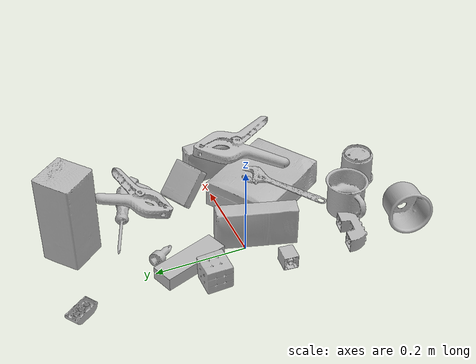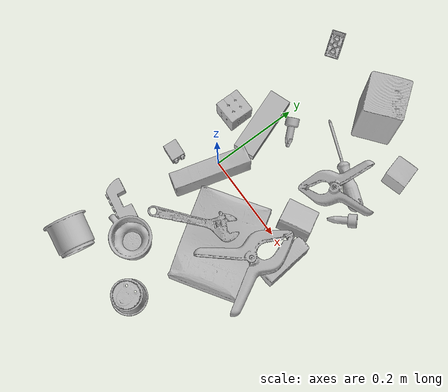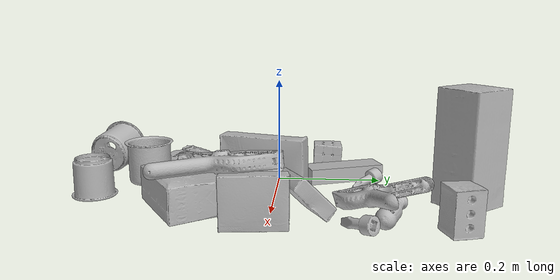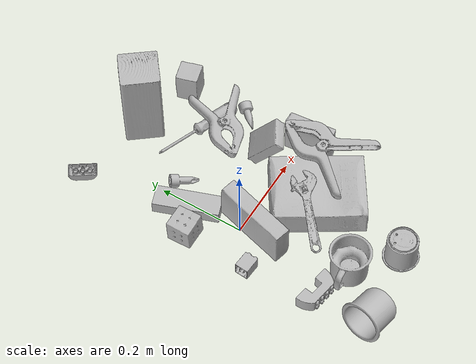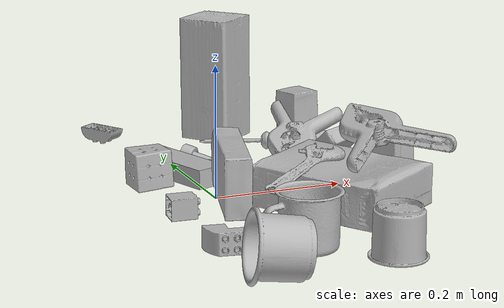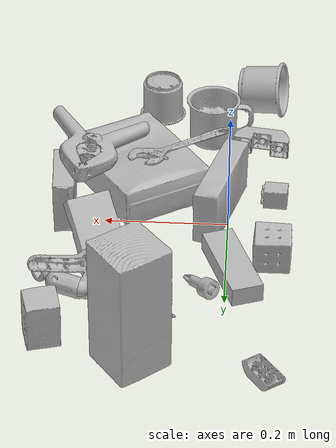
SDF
<sdf version="1.4">
  <world name="default">
    <light name="light1" type="point">
      <pose>0 0 1 0 0 0</pose>
      <diffuse>3 3 3 1</diffuse>
      <specular>3 3 3 1</specular>
    </light>
    <light name="light2" type="point">
      <pose>0 0.5 2 0 0 0</pose>
      <diffuse>1 1 1 1</diffuse>
      <specular>1 1 1 1</specular>
    </light>
    <light name="light3" type="point">
      <pose>0 0.5 2 0 0 0</pose>
      <diffuse>3 3 3 1</diffuse>
      <specular>3 3 3 1</specular>
    </light>
    <scene>
      <ambient>0.7 0.7 0.7</ambient>
    </scene>
    <model name="box21">
      <link name="link_box21">
        <collision name="default">
          <geometry>
            <mesh>
              <uri>model://cracker_box/collision_meshes/collision.obj</uri>
              <scale>1.0 1.0 1.0</scale>
            </mesh>
          </geometry>
          <surface>
            <friction>
              <ode>
                <mu>0.5</mu>
                <mu2>0.5</mu2>
              </ode>
            </friction>
          <contact>
        <ode>
            <max_vel>0</max_vel>
            <min_depth>0.0001</min_depth>
            <kp>1e8</kp>
        </ode>
    </contact></surface>
        </collision>
        <visual name="default">
          <geometry>
            <mesh>
              <uri>model://cracker_box/visual_meshes/visual.dae</uri>
              <scale>1.0 1.0 1.0</scale>
            </mesh>
          </geometry>
        </visual>
        <inertial>
          <mass>1.391977071762085</mass>
          <pose>0.0009464159375056624 0.0002543424488976598 -0.0017029533628374338 -0.000316207597302205 -0.011106489600460226 0.002546794768991959</pose>
          <inertia>
            <ixx>0.0035405685</ixx>
            <iyy>0.0058461735</iyy>
            <izz>0.008343027</izz>
            <ixy>0</ixy>
            <ixz>0</ixz>
            <iyz>0</iyz>
          </inertia>
        </inertial>
      </link>
      <pose>0.15233981609344482 -0.10654624551534653 0.03638412058353424 -0.014050880964996905 -0.005016083166409006 2.1474223076654537</pose>
    </model>
    <model name="box22">
      <link name="link_box22">
        <collision name="default">
          <geometry>
            <mesh>
              <uri>model://pudding_box/collision_meshes/collision.obj</uri>
              <scale>1.0 1.0 1.0</scale>
            </mesh>
          </geometry>
          <surface>
            <friction>
              <ode>
                <mu>0.5</mu>
                <mu2>0.5</mu2>
              </ode>
            </friction>
          <contact>
        <ode>
            <max_vel>0</max_vel>
            <min_depth>0.0001</min_depth>
            <kp>1e8</kp>
        </ode>
    </contact></surface>
        </collision>
        <visual name="default">
          <geometry>
            <mesh>
              <uri>model://pudding_box/visual_meshes/visual.dae</uri>
              <scale>1.0 1.0 1.0</scale>
            </mesh>
          </geometry>
        </visual>
        <inertial>
          <mass>0.30066633224487305</mass>
          <pose>0.0004894821904599667 0.0008067885646596551 -0.0005188827635720372 0.005213102250656644 -0.006603798267444238 0.020079828885202117</pose>
          <inertia>
            <ixx>0.0003398878</ixx>
            <iyy>0.00022867892</iyy>
            <izz>0.00050193316</izz>
            <ixy>0</ixy>
            <ixz>0</ixz>
            <iyz>0</iyz>
          </inertia>
        </inertial>
      </link>
      <pose>0.26697593927383423 -0.019280346110463142 0.044576533138751984 -0.020361777332567308 -1.5480888723088948 -3.034485413289039</pose>
    </model>
    <model name="box23">
      <link name="link_box23">
        <collision name="default">
          <geometry>
            <mesh>
              <uri>model://rubiks_cube/collision_meshes/collision.obj</uri>
              <scale>1.0 1.0 1.0</scale>
            </mesh>
          </geometry>
          <surface>
            <friction>
              <ode>
                <mu>0.5</mu>
                <mu2>0.5</mu2>
              </ode>
            </friction>
          <contact>
        <ode>
            <max_vel>0</max_vel>
            <min_depth>0.0001</min_depth>
            <kp>1e8</kp>
        </ode>
    </contact></surface>
        </collision>
        <visual name="default">
          <geometry>
            <mesh>
              <uri>model://rubiks_cube/visual_meshes/visual.dae</uri>
              <scale>1.0 1.0 1.0</scale>
            </mesh>
          </geometry>
        </visual>
        <inertial>
          <mass>0.26383036375045776</mass>
          <pose>2.6721041649580002e-05 5.256966323941015e-05 -7.264316082000732e-06 -0.054671492146459166 -0.0981403456898064 -0.03445706250673431</pose>
          <inertia>
            <ixx>0.000145784</ixx>
            <iyy>0.00014510413</iyy>
            <izz>0.00014699204</izz>
            <ixy>0</ixy>
            <ixz>0</ixz>
            <iyz>0</iyz>
          </inertia>
        </inertial>
      </link>
      <pose>-0.0708058550953865 0.09662643074989319 0.029700232669711113 -1.61275641031142 -0.020652620307363125 0.015941950059089535</pose>
    </model>
    <model name="cup1">
      <link name="link_cup1">
        <collision name="default">
          <geometry>
            <mesh>
              <uri>model://i_cups/collision_meshes/collision.obj</uri>
              <scale>1.0 1.0 1.0</scale>
            </mesh>
          </geometry>
          <surface>
            <friction>
              <ode>
                <mu>0.5</mu>
                <mu2>0.5</mu2>
              </ode>
            </friction>
          <contact>
        <ode>
            <max_vel>0</max_vel>
            <min_depth>0.0001</min_depth>
            <kp>1e8</kp>
        </ode>
    </contact></surface>
        </collision>
        <visual name="default">
          <geometry>
            <mesh>
              <uri>model://i_cups/visual_meshes/visual.dae</uri>
              <scale>1.0 1.0 1.0</scale>
            </mesh>
          </geometry>
        </visual>
        <inertial>
          <mass>0.07817669957876205</mass>
          <pose>0.00011240140884183347 0.00016797371790744364 -0.0008579030982218683 -0.02898336998566683 -0.039872909189422004 -0.34590568894983</pose>
          <inertia>
            <ixx>0.000108236774</ixx>
            <iyy>0.000109190434</iyy>
            <izz>0.00012097212</izz>
            <ixy>0</ixy>
            <ixz>0</ixz>
            <iyz>0</iyz>
          </inertia>
        </inertial>
      </link>
      <pose>-0.05258585140109062 -0.3536067306995392 0.04477963596582413 -0.3580448799732526 -1.4431054139193729 0.17271451387712208</pose>
    </model>
    <model name="cup2">
      <link name="link_cup2">
        <collision name="default">
          <geometry>
            <mesh>
              <uri>model://f_cups/collision_meshes/collision.obj</uri>
              <scale>1.0 1.0 1.0</scale>
            </mesh>
          </geometry>
          <surface>
            <friction>
              <ode>
                <mu>0.5</mu>
                <mu2>0.5</mu2>
              </ode>
            </friction>
          <contact>
        <ode>
            <max_vel>0</max_vel>
            <min_depth>0.0001</min_depth>
            <kp>1e8</kp>
        </ode>
    </contact></surface>
        </collision>
        <visual name="default">
          <geometry>
            <mesh>
              <uri>model://f_cups/visual_meshes/visual.dae</uri>
              <scale>1.0 1.0 1.0</scale>
            </mesh>
          </geometry>
        </visual>
        <inertial>
          <mass>0.06179655343294144</mass>
          <pose>-0.003171469084918499 -0.0006240077782422304 -0.0036555363330990076 0.786228783809594 -0.26079147583364887 -0.18237327348602217</pose>
          <inertia>
            <ixx>5.8090412e-05</ixx>
            <iyy>6.0937502e-05</iyy>
            <izz>6.3437656e-05</izz>
            <ixy>0</ixy>
            <ixz>0</ixz>
            <iyz>0</iyz>
          </inertia>
        </inertial>
      </link>
      <pose>0.12581110000610352 -0.33124810457229614 0.03630403056740761 -3.141592496414769 -1.1708857195235218e-07 0.975232395398482</pose>
    </model>
    <model name="box11">
      <link name="link_box11">
        <collision name="default">
          <geometry>
            <mesh>
              <uri>model://jenga/collision_meshes/collision.obj</uri>
              <scale>1.0 1.0 1.0</scale>
            </mesh>
          </geometry>
          <surface>
            <friction>
              <ode>
                <mu>0.5</mu>
                <mu2>0.5</mu2>
              </ode>
            </friction>
          <contact>
        <ode>
            <max_vel>0</max_vel>
            <min_depth>0.0001</min_depth>
            <kp>1e8</kp>
        </ode>
    </contact></surface>
        </collision>
        <visual name="default">
          <geometry>
            <mesh>
              <uri>model://jenga/visual_meshes/visual.dae</uri>
              <scale>1.0 1.0 1.0</scale>
            </mesh>
          </geometry>
        </visual>
        <inertial>
          <mass>0.2841220796108246</mass>
          <pose>-2.5028555228345795e-07 -0.00010250010382151231 -4.0923401684267446e-05 0.0 -7.34215461761844e-07 0.0</pose>
          <inertia>
            <ixx>7.8623474e-05</ixx>
            <iyy>0.00053275056</iyy>
            <izz>0.0005687565</izz>
            <ixy>0</ixy>
            <ixz>0</ixz>
            <iyz>0</iyz>
          </inertia>
        </inertial>
      </link>
      <pose>-0.009409835562109947 0.12853382527828217 0.014999995939433575 4.0923700424697304e-08 8.629255616223754e-09 1.91880332284023</pose>
    </model>
    <model name="box12">
      <link name="link_box12">
        <collision name="default">
          <geometry>
            <mesh>
              <uri>model://wood_block/collision_meshes/collision.obj</uri>
              <scale>1.0 1.0 1.0</scale>
            </mesh>
          </geometry>
          <surface>
            <friction>
              <ode>
                <mu>0.5</mu>
                <mu2>0.5</mu2>
              </ode>
            </friction>
          <contact>
        <ode>
            <max_vel>0</max_vel>
            <min_depth>0.0001</min_depth>
            <kp>1e8</kp>
        </ode>
    </contact></surface>
        </collision>
        <visual name="default">
          <geometry>
            <mesh>
              <uri>model://wood_block/visual_meshes/visual.dae</uri>
              <scale>1.0 1.0 1.0</scale>
            </mesh>
          </geometry>
        </visual>
        <inertial>
          <mass>1.792885661125183</mass>
          <pose>-5.813315510749817e-06 -0.0005708095268346369 0.0002640858292579651 -0.0522099864925601 -0.005192695938411627 -0.006861379223067069</pose>
          <inertia>
            <ixx>0.0023991528</ixx>
            <iyy>0.007578924</iyy>
            <izz>0.007550574</izz>
            <ixy>0</ixy>
            <ixz>0</ixz>
            <iyz>0</iyz>
          </inertia>
        </inertial>
      </link>
      <pose>0.13127458095550537 0.3392324447631836 0.10359007865190506 -0.29765167267857445 -1.5707960494306894 -0.6004151840642696</pose>
    </model>
    <model name="box13">
      <link name="link_box13">
        <collision name="default">
          <geometry>
            <mesh>
              <uri>model://sugar_box/collision_meshes/collision.obj</uri>
              <scale>1.0 1.0 1.0</scale>
            </mesh>
          </geometry>
          <surface>
            <friction>
              <ode>
                <mu>0.5</mu>
                <mu2>0.5</mu2>
              </ode>
            </friction>
          <contact>
        <ode>
            <max_vel>0</max_vel>
            <min_depth>0.0001</min_depth>
            <kp>1e8</kp>
        </ode>
    </contact></surface>
        </collision>
        <visual name="default">
          <geometry>
            <mesh>
              <uri>model://sugar_box/visual_meshes/visual.dae</uri>
              <scale>1.0 1.0 1.0</scale>
            </mesh>
          </geometry>
        </visual>
        <inertial>
          <mass>0.8825364708900452</mass>
          <pose>0.0010343727190047503 3.8491099985549226e-05 -0.00036364805418998003 -0.0004046260965456432 0.0010506635219437153 0.002615379021860657</pose>
          <inertia>
            <ixx>0.0007353271</ixx>
            <iyy>0.0023767278</iyy>
            <izz>0.002845227</izz>
            <ixy>0</ixy>
            <ixz>0</ixz>
            <iyz>0</iyz>
          </inertia>
        </inertial>
      </link>
      <pose>0.013504419475793839 -0.03022804483771324 0.04645008593797684 1.5710198184625506 -4.0143108833747344e-05 1.2990896618985175</pose>
    </model>
    <model name="box14">
      <link name="link_box14">
        <collision name="default">
          <geometry>
            <mesh>
              <uri>model://gelatin_box/collision_meshes/collision.obj</uri>
              <scale>1.0 1.0 1.0</scale>
            </mesh>
          </geometry>
          <surface>
            <friction>
              <ode>
                <mu>0.5</mu>
                <mu2>0.5</mu2>
              </ode>
            </friction>
          <contact>
        <ode>
            <max_vel>0</max_vel>
            <min_depth>0.0001</min_depth>
            <kp>1e8</kp>
        </ode>
    </contact></surface>
        </collision>
        <visual name="default">
          <geometry>
            <mesh>
              <uri>model://gelatin_box/visual_meshes/visual.dae</uri>
              <scale>1.0 1.0 1.0</scale>
            </mesh>
          </geometry>
        </visual>
        <inertial>
          <mass>0.13771659135818481</mass>
          <pose>0.0004319618456065655 0.00011156871914863586 -0.0003640321083366871 -0.0010503722043797578 -0.004755819155943452 0.016440555746729004</pose>
          <inertia>
            <ixx>9.721668e-05</ixx>
            <iyy>6.944137e-05</iyy>
            <izz>0.00014798543</izz>
            <ixy>0</ixy>
            <ixz>0</ixz>
            <iyz>0</iyz>
          </inertia>
        </inertial>
      </link>
      <pose>0.2111397087574005 0.059428270906209946 0.03872711956501007 2.356627579595285 0.005587135745245002 0.4966431251418118</pose>
    </model>
    <model name="cup15">
      <link name="link_cup15">
        <collision name="default">
          <geometry>
            <mesh>
              <uri>model://mug/collision_meshes/collision.obj</uri>
              <scale>1.0 1.0 1.0</scale>
            </mesh>
          </geometry>
          <surface>
            <friction>
              <ode>
                <mu>0.5</mu>
                <mu2>0.5</mu2>
              </ode>
            </friction>
          <contact>
        <ode>
            <max_vel>0</max_vel>
            <min_depth>0.0001</min_depth>
            <kp>1e8</kp>
        </ode>
    </contact></surface>
        </collision>
        <visual name="default">
          <geometry>
            <mesh>
              <uri>model://mug/visual_meshes/visual.dae</uri>
              <scale>1.0 1.0 1.0</scale>
            </mesh>
          </geometry>
        </visual>
        <inertial>
          <mass>0.09286905825138092</mass>
          <pose>0.009571668691933155 0.0008143252343870699 -0.010947328992187977 -0.12983168029791675 0.08737751579099198 0.05507277032354666</pose>
          <inertia>
            <ixx>9.2248694e-05</ixx>
            <iyy>0.00010303637</iyy>
            <izz>0.00011916295</izz>
            <ixy>0</ixy>
            <ixz>0</ixz>
            <iyz>0</iyz>
          </inertia>
        </inertial>
      </link>
      <pose>0.02126355469226837 -0.2563220262527466 0.04094930738210678 -8.140392856620458e-06 8.846628087636374e-06 0.0692979040729546</pose>
    </model>
    <model name="toy1">
      <link name="link_toy1">
        <collision name="default">
          <geometry>
            <mesh>
              <uri>model://e_toy_airplane/collision_meshes/collision.obj</uri>
              <scale>1.0 1.0 1.0</scale>
            </mesh>
          </geometry>
          <surface>
            <friction>
              <ode>
                <mu>0.5</mu>
                <mu2>0.5</mu2>
              </ode>
            </friction>
          <contact>
        <ode>
            <max_vel>0</max_vel>
            <min_depth>0.0001</min_depth>
            <kp>1e8</kp>
        </ode>
    </contact></surface>
        </collision>
        <visual name="default">
          <geometry>
            <mesh>
              <uri>model://e_toy_airplane/visual_meshes/visual.dae</uri>
              <scale>1.0 1.0 1.0</scale>
            </mesh>
          </geometry>
        </visual>
        <inertial>
          <mass>0.023911256343126297</mass>
          <pose>0.00011740469199139625 -2.2482965505332686e-05 -0.011187205091118813 0.005518515901869279 0.009228280443904262 0.15041685177791278</pose>
          <inertia>
            <ixx>7.297989e-06</ixx>
            <iyy>7.223337e-06</iyy>
            <izz>2.1933329e-06</izz>
            <ixy>0</ixy>
            <ixz>0</ixz>
            <iyz>0</iyz>
          </inertia>
        </inertial>
      </link>
      <pose>0.266446977853775 0.1410495638847351 0.012221219018101692 1.7424974128868105 -0.14001903070120025 -0.7777624859657339</pose>
    </model>
    <model name="toy2">
      <link name="link_toy2">
        <collision name="default">
          <geometry>
            <mesh>
              <uri>model://e_lego_duplo/collision_meshes/collision.obj</uri>
              <scale>1.0 1.0 1.0</scale>
            </mesh>
          </geometry>
          <surface>
            <friction>
              <ode>
                <mu>0.5</mu>
                <mu2>0.5</mu2>
              </ode>
            </friction>
          <contact>
        <ode>
            <max_vel>0</max_vel>
            <min_depth>0.0001</min_depth>
            <kp>1e8</kp>
        </ode>
    </contact></surface>
        </collision>
        <visual name="default">
          <geometry>
            <mesh>
              <uri>model://e_lego_duplo/visual_meshes/visual.dae</uri>
              <scale>1.0 1.0 1.0</scale>
            </mesh>
          </geometry>
        </visual>
        <inertial>
          <mass>0.11075761169195175</mass>
          <pose>0.00032560486579313874 0.0002348541165702045 0.0019521445501595736 -0.02256776115193108 -6.825012723321977e-05 -0.007625153470106003</pose>
          <inertia>
            <ixx>2.3096625e-05</ixx>
            <iyy>9.479449e-05</iyy>
            <izz>9.231077e-05</izz>
            <ixy>0</ixy>
            <ixz>0</ixz>
            <iyz>0</iyz>
          </inertia>
        </inertial>
      </link>
      <pose>-0.05421045795083046 -0.22769998013973236 0.016517898067831993 -1.571455851079822 0.005844248024179618 2.9740286072067135</pose>
    </model>
    <model name="toy3">
      <link name="link_toy3">
        <collision name="default">
          <geometry>
            <mesh>
              <uri>model://foam_brick/collision_meshes/collision.obj</uri>
              <scale>1.0 1.0 1.0</scale>
            </mesh>
          </geometry>
          <surface>
            <friction>
              <ode>
                <mu>0.5</mu>
                <mu2>0.5</mu2>
              </ode>
            </friction>
          <contact>
        <ode>
            <max_vel>0</max_vel>
            <min_depth>0.0001</min_depth>
            <kp>1e8</kp>
        </ode>
    </contact></surface>
        </collision>
        <visual name="default">
          <geometry>
            <mesh>
              <uri>model://foam_brick/visual_meshes/visual.dae</uri>
              <scale>1.0 1.0 1.0</scale>
            </mesh>
          </geometry>
        </visual>
        <inertial>
          <mass>0.18736568093299866</mass>
          <pose>-0.0002522472059354186 0.0003458441933616996 -0.0002532101352699101 -0.2940186982087205 0.017274432871393446 -0.000744985669109422</pose>
          <inertia>
            <ixx>8.184482e-05</ixx>
            <iyy>0.00013066948</iyy>
            <izz>0.00013233014</izz>
            <ixy>0</ixy>
            <ixz>0</ixz>
            <iyz>0</iyz>
          </inertia>
        </inertial>
      </link>
      <pose>0.264569491147995 0.29823413491249084 0.03871981427073479 0.5931594548550984 -1.5392405378905332 2.8293331887145685</pose>
    </model>
    <model name="toy4">
      <link name="link_toy4">
        <collision name="default">
          <geometry>
            <mesh>
              <uri>model://b_lego_duplo/collision_meshes/collision.obj</uri>
              <scale>1.0 1.0 1.0</scale>
            </mesh>
          </geometry>
          <surface>
            <friction>
              <ode>
                <mu>0.5</mu>
                <mu2>0.5</mu2>
              </ode>
            </friction>
          <contact>
        <ode>
            <max_vel>0</max_vel>
            <min_depth>0.0001</min_depth>
            <kp>1e8</kp>
        </ode>
    </contact></surface>
        </collision>
        <visual name="default">
          <geometry>
            <mesh>
              <uri>model://b_lego_duplo/visual_meshes/visual.dae</uri>
              <scale>1.0 1.0 1.0</scale>
            </mesh>
          </geometry>
        </visual>
        <inertial>
          <mass>0.025353357195854187</mass>
          <pose>-0.00011053043272113428 -9.152237907983363e-06 0.001929429010488093 -0.03749469050897604 -0.02635423063131295 0.4518929125976256</pose>
          <inertia>
            <ixx>5.188755e-06</ixx>
            <iyy>5.223636e-06</iyy>
            <izz>4.623011e-06</izz>
            <ixy>0</ixy>
            <ixz>0</ixz>
            <iyz>0</iyz>
          </inertia>
        </inertial>
      </link>
      <pose>-0.07466553151607513 -0.06446310132741928 0.01612118072807789 1.5723702825012043 -0.012009721077691498 1.5017804312024943</pose>
    </model>
    <model name="toy5">
      <link name="link_toy5">
        <collision name="default">
          <geometry>
            <mesh>
              <uri>model://d_toy_airplane/collision_meshes/collision.obj</uri>
              <scale>1.0 1.0 1.0</scale>
            </mesh>
          </geometry>
          <surface>
            <friction>
              <ode>
                <mu>0.5</mu>
                <mu2>0.5</mu2>
              </ode>
            </friction>
          <contact>
        <ode>
            <max_vel>0</max_vel>
            <min_depth>0.0001</min_depth>
            <kp>1e8</kp>
        </ode>
    </contact></surface>
        </collision>
        <visual name="default">
          <geometry>
            <mesh>
              <uri>model://d_toy_airplane/visual_meshes/visual.dae</uri>
              <scale>1.0 1.0 1.0</scale>
            </mesh>
          </geometry>
        </visual>
        <inertial>
          <mass>0.012228579260408878</mass>
          <pose>9.410289931111038e-05 -5.8093195548281074e-05 -0.011728097684681416 0.00026677116185868234 0.004678984415060646 0.5194210089241819</pose>
          <inertia>
            <ixx>3.6658907e-06</ixx>
            <iyy>3.6686554e-06</iyy>
            <izz>1.1067563e-06</izz>
            <ixy>0</ixy>
            <ixz>0</ixz>
            <iyz>0</iyz>
          </inertia>
        </inertial>
      </link>
      <pose>0.04093904793262482 0.16953186690807343 0.011460823938250542 1.9236376367313346 -0.9526118837679076 0.4418391232994163</pose>
    </model>
    <model name="toy6">
      <link name="link_toy6">
        <collision name="default">
          <geometry>
            <mesh>
              <uri>model://a_lego_duplo/collision_meshes/collision.obj</uri>
              <scale>1.0 1.0 1.0</scale>
            </mesh>
          </geometry>
          <surface>
            <friction>
              <ode>
                <mu>0.5</mu>
                <mu2>0.5</mu2>
              </ode>
            </friction>
          <contact>
        <ode>
            <max_vel>0</max_vel>
            <min_depth>0.0001</min_depth>
            <kp>1e8</kp>
        </ode>
    </contact></surface>
        </collision>
        <visual name="default">
          <geometry>
            <mesh>
              <uri>model://a_lego_duplo/visual_meshes/visual.dae</uri>
              <scale>1.0 1.0 1.0</scale>
            </mesh>
          </geometry>
        </visual>
        <inertial>
          <mass>0.012199957855045795</mass>
          <pose>-0.00011337617615936324 0.00018517585704103112 0.0003692606114782393 -0.014116995063493705 -0.0001256559143483996 6.140869386576653e-05</pose>
          <inertia>
            <ixx>1.564132e-06</ixx>
            <iyy>3.5039989e-06</iyy>
            <izz>4.340482e-06</izz>
            <ixy>0</ixy>
            <ixz>0</ixz>
            <iyz>0</iyz>
          </inertia>
        </inertial>
      </link>
      <pose>-0.06033109501004219 0.37424495816230774 0.012124722823500633 -3.14130348303775 -0.015583248954726653 2.179437289676992</pose>
    </model>
    <model name="hardware1">
      <link name="link_hardware1">
        <collision name="default">
          <geometry>
            <mesh>
              <uri>model://phillips_screwdriver/collision_meshes/collision.obj</uri>
              <scale>1.0 1.0 1.0</scale>
            </mesh>
          </geometry>
          <surface>
            <friction>
              <ode>
                <mu>0.5</mu>
                <mu2>0.5</mu2>
              </ode>
            </friction>
          <contact>
        <ode>
            <max_vel>0</max_vel>
            <min_depth>0.0001</min_depth>
            <kp>1e8</kp>
        </ode>
    </contact></surface>
        </collision>
        <visual name="default">
          <geometry>
            <mesh>
              <uri>model://phillips_screwdriver/visual_meshes/visual.dae</uri>
              <scale>1.0 1.0 1.0</scale>
            </mesh>
          </geometry>
        </visual>
        <inertial>
          <mass>0.06495495140552521</mass>
          <pose>-0.04777183011174202 0.0010362302418798208 -0.00045555501128546894 -0.1571888451297522 0.005850998841919991 -0.0021567342335393844</pose>
          <inertia>
            <ixx>7.63154e-06</ixx>
            <iyy>9.568614e-05</iyy>
            <izz>9.576745e-05</izz>
            <ixy>0</ixy>
            <ixz>0</ixz>
            <iyz>0</iyz>
          </inertia>
        </inertial>
      </link>
      <pose>0.17411507666110992 0.21672160923480988 0.015774095430970192 2.0714091905824588 0.007639013288960824 2.7710188326954044</pose>
    </model>
    <model name="hardware2">
      <link name="link_hardware2">
        <collision name="default">
          <geometry>
            <mesh>
              <uri>model://extra_large_clamp/collision_meshes/collision.obj</uri>
              <scale>1.0 1.0 1.0</scale>
            </mesh>
          </geometry>
          <surface>
            <friction>
              <ode>
                <mu>0.5</mu>
                <mu2>0.5</mu2>
              </ode>
            </friction>
          <contact>
        <ode>
            <max_vel>0</max_vel>
            <min_depth>0.0001</min_depth>
            <kp>1e8</kp>
        </ode>
    </contact></surface>
        </collision>
        <visual name="default">
          <geometry>
            <mesh>
              <uri>model://extra_large_clamp/visual_meshes/visual.dae</uri>
              <scale>1.0 1.0 1.0</scale>
            </mesh>
          </geometry>
        </visual>
        <inertial>
          <mass>0.19384004175662994</mass>
          <pose>0.003232018556445837 -7.61538467486389e-05 0.00031721554114483297 0.013786997874205318 -0.000506684650300538 -0.0008936209831217155</pose>
          <inertia>
            <ixx>0.00029460518</ixx>
            <iyy>0.00050721905</iyy>
            <izz>0.0007749263</izz>
            <ixy>0</ixy>
            <ixz>0</ixz>
            <iyz>0</iyz>
          </inertia>
        </inertial>
      </link>
      <pose>0.2271173596382141 -0.07535746693611145 0.0958755686879158 3.010541814917821 -0.08874134711232085 1.4938770710333444</pose>
    </model>
    <model name="hardware3">
      <link name="link_hardware3">
        <collision name="default">
          <geometry>
            <mesh>
              <uri>model://large_clamp/collision_meshes/collision.obj</uri>
              <scale>1.0 1.0 1.0</scale>
            </mesh>
          </geometry>
          <surface>
            <friction>
              <ode>
                <mu>0.5</mu>
                <mu2>0.5</mu2>
              </ode>
            </friction>
          <contact>
        <ode>
            <max_vel>0</max_vel>
            <min_depth>0.0001</min_depth>
            <kp>1e8</kp>
        </ode>
    </contact></surface>
        </collision>
        <visual name="default">
          <geometry>
            <mesh>
              <uri>model://large_clamp/visual_meshes/visual.dae</uri>
              <scale>1.0 1.0 1.0</scale>
            </mesh>
          </geometry>
        </visual>
        <inertial>
          <mass>0.09168914705514908</mass>
          <pose>0.006369357462972403 0.0003585686208680272 -0.0001839803735492751 -0.0021330784539622108 0.00967158945845961 0.026633182273159455</pose>
          <inertia>
            <ixx>8.0894904e-05</ixx>
            <iyy>0.00015362375</iyy>
            <izz>0.00022223631</izz>
            <ixy>0</ixy>
            <ixz>0</ixz>
            <iyz>0</iyz>
          </inertia>
        </inertial>
      </link>
      <pose>0.2045004814863205 0.1698787659406662 0.03719140961766243 -0.04749456143098896 0.2871982392727057 -2.2887385290502964</pose>
    </model>
    <model name="hardware4">
      <link name="link_hardware4">
        <collision name="default">
          <geometry>
            <mesh>
              <uri>model://adjustable_wrench/collision_meshes/collision.obj</uri>
              <scale>1.0 1.0 1.0</scale>
            </mesh>
          </geometry>
          <surface>
            <friction>
              <ode>
                <mu>0.5</mu>
                <mu2>0.5</mu2>
              </ode>
            </friction>
          <contact>
        <ode>
            <max_vel>0</max_vel>
            <min_depth>0.0001</min_depth>
            <kp>1e8</kp>
        </ode>
    </contact></surface>
        </collision>
        <visual name="default">
          <geometry>
            <mesh>
              <uri>model://adjustable_wrench/visual_meshes/visual.dae</uri>
              <scale>1.0 1.0 1.0</scale>
            </mesh>
          </geometry>
        </visual>
        <inertial>
          <mass>0.03454793244600296</mass>
          <pose>0.03740980476140976 -0.0028968879487365484 -0.001114922808483243 -0.01447336202596381 0.006656025927011416 -0.010954184309206349</pose>
          <inertia>
            <ixx>7.0707333e-06</ixx>
            <iyy>8.275469e-05</iyy>
            <izz>8.944984e-05</izz>
            <ixy>0</ixy>
            <ixz>0</ixz>
            <iyz>0</iyz>
          </inertia>
        </inertial>
      </link>
      <pose>0.08312272280454636 -0.12039083242416382 0.07239680737257004 0.1411226544585393 -0.07941099222989596 0.6809160681343865</pose>
    </model>
  <physics type="ode">
      <max_contacts>50</max_contacts>
      <ode>
        <solver>
          <type>quick</type>
          <iters>75</iters>
        </solver>
        <constraints>
          <contact_max_correcting_vel>0</contact_max_correcting_vel>
          <contact_surface_layer>0</contact_surface_layer>
        </constraints>
      </ode>
    </physics></world>
</sdf>
